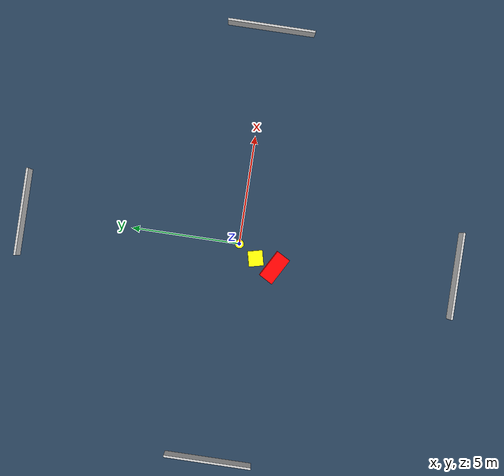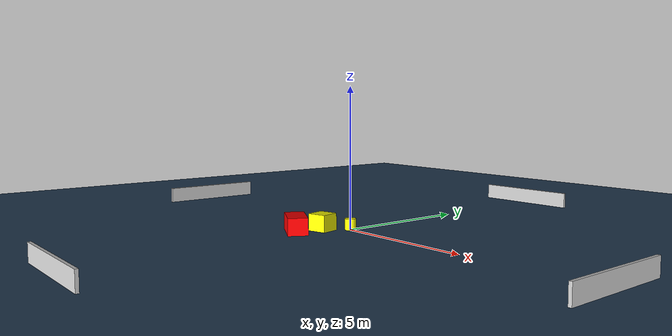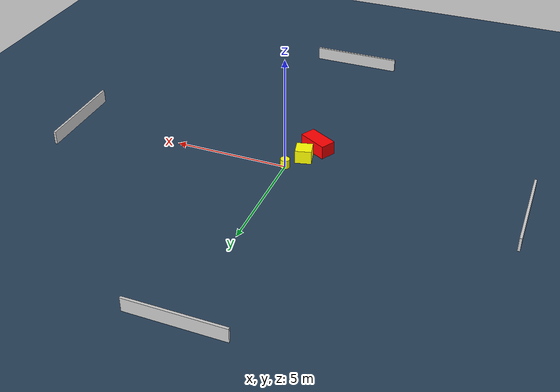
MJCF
<?xml version="1.0" ?>
<mujoco model="generated_environment">
  <option timestep="0.01" integrator="RK4" cone="elliptic"/>
  <default>
    <geom density="1"/>
  </default>
  <asset>
    <texture builtin="gradient" height="3072" name="skybox" rgb1="0.3 0.5 0.7" rgb2="0 0 0" type="skybox" width="512"/>
    <texture builtin="checker" height="300" name="groundplane" rgb1="0.2 0.3 0.4" rgb2="0.1 0.2 0.3" type="2d" width="300"/>
    <material name="groundplane" reflectance="0.2" texrepeat="5 5" texture="groundplane"/>
  </asset>
  <worldbody>
    <light dir="0 0 -1" directional="true" pos="0 0 1.5"/>
    <geom condim="3" friction="0.5 0.005 0.001" material="groundplane" name="floor" pos="0 0 0" size="0 0 0.05" type="plane"/>
    <body name="walls">
      <geom name="wall_1" condim="4" pos="-10.0 0.0 0.3" rgba="0.800000011920929 0.800000011920929 0.800000011920929 1.0" size="0.05 2.0 0.3" type="box"/>
      <geom name="wall_2" condim="4" pos="10.0 0.0 0.3" rgba="0.800000011920929 0.800000011920929 0.800000011920929 1.0" size="0.05 2.0 0.3" type="box"/>
      <geom name="wall_3" condim="4" pos="0.0 -10.0 0.3" rgba="0.800000011920929 0.800000011920929 0.800000011920929 1.0" size="2.0 0.05 0.3" type="box"/>
      <geom name="wall_4" condim="4" pos="0.0 10.0 0.3" rgba="0.800000011920929 0.800000011920929 0.800000011920929 1.0" size="2.0 0.05 0.3" type="box"/>
    </body>
    <body name="robot">
      <joint name="joint_x" type="slide" pos="0 0 0" axis="1 0 0"/>
      <joint name="joint_y" type="slide" pos="0 0 0" axis="0 1 0"/>
      <geom name="robot" type="cylinder" pos="0.0 0.0 0.2" size="0.2 0.2 0.0" mass="5.0" friction="1.0 0.005 0.0001" condim="4" rgba="1.0 1.0 0.0 1.0"/>
    </body>
    <body name="obstacle_1_movable">
      <geom name="obstacle_1_movable" condim="4" pos="-0.5416356569471892 -0.8181094922627652 0.3" euler="0 0 193.5560114155391" friction="0.0 0.005 0.001" rgba="1.0 1.0 0.0 1.0" size="0.35006547173573893 0.3362274671694645 0.3" type="box" mass="0.1"/>
      <joint type="free"/>
    </body>
    <body name="obstacle_2_static">
      <geom name="obstacle_2_static" condim="4" pos="-0.8364491827533541 -1.7356215202631722 0.3" euler="0 0 330.84119339500154" friction="0.0 0.005 0.001" rgba="1.0 0.0 0.0 1.0" size="0.6752212452497106 0.344624179332906 0.3" type="box"/>
    </body>
  </worldbody>
  <actuator>
    <motor name="actuator_x" joint="joint_x" gear="1" ctrlrange="-1 1"/>
    <motor name="actuator_y" joint="joint_y" gear="1" ctrlrange="-1 1"/>
  </actuator>
</mujoco>
